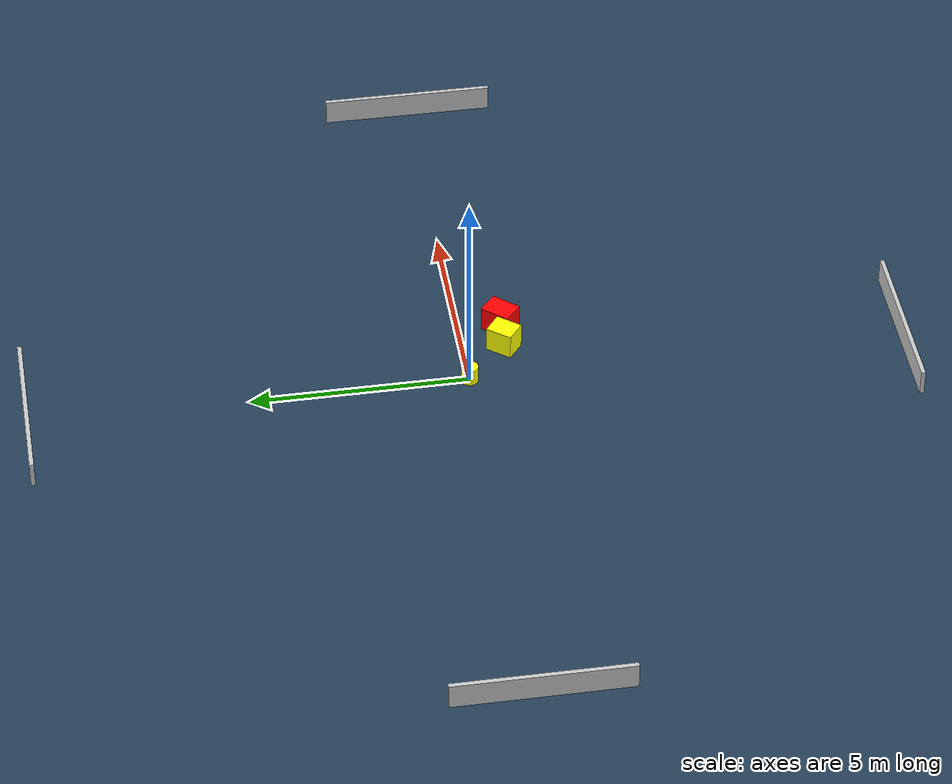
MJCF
<?xml version="1.0" ?>
<mujoco model="generated_environment">
  <option timestep="0.01" integrator="RK4" cone="elliptic"/>
  <default>
    <geom density="1"/>
  </default>
  <asset>
    <texture builtin="gradient" height="3072" name="skybox" rgb1="0.3 0.5 0.7" rgb2="0 0 0" type="skybox" width="512"/>
    <texture builtin="checker" height="300" name="groundplane" rgb1="0.2 0.3 0.4" rgb2="0.1 0.2 0.3" type="2d" width="300"/>
    <material name="groundplane" reflectance="0.2" texrepeat="5 5" texture="groundplane"/>
  </asset>
  <worldbody>
    <light dir="0 0 -1" directional="true" pos="0 0 1.5"/>
    <geom condim="3" friction="0.5 0.005 0.001" material="groundplane" name="floor" pos="0 0 0" size="0 0 0.05" type="plane"/>
    <body name="walls">
      <geom name="wall_1" condim="4" pos="-10.0 0.0 0.3" rgba="0.800000011920929 0.800000011920929 0.800000011920929 1.0" size="0.05 2.0 0.3" type="box"/>
      <geom name="wall_2" condim="4" pos="10.0 0.0 0.3" rgba="0.800000011920929 0.800000011920929 0.800000011920929 1.0" size="0.05 2.0 0.3" type="box"/>
      <geom name="wall_3" condim="4" pos="0.0 -10.0 0.3" rgba="0.800000011920929 0.800000011920929 0.800000011920929 1.0" size="2.0 0.05 0.3" type="box"/>
      <geom name="wall_4" condim="4" pos="0.0 10.0 0.3" rgba="0.800000011920929 0.800000011920929 0.800000011920929 1.0" size="2.0 0.05 0.3" type="box"/>
    </body>
    <body name="robot">
      <joint name="joint_x" type="slide" pos="0 0 0" axis="1 0 0"/>
      <joint name="joint_y" type="slide" pos="0 0 0" axis="0 1 0"/>
      <geom name="robot" type="cylinder" pos="0.0 0.0 0.2" size="0.2 0.2 0.0" mass="5.0" friction="1.0 0.005 0.0001" condim="4" rgba="1.0 1.0 0.0 1.0"/>
    </body>
    <body name="obstacle_1_movable">
      <geom name="obstacle_1_movable" condim="4" pos="1.000538242394745 -0.9438327629185211 0.3" euler="0 0 231.74819347359573" friction="0.0 0.005 0.001" rgba="1.0 1.0 0.0 1.0" size="0.3123978411430701 0.2571227338253186 0.3" type="box" mass="0.1"/>
      <joint type="free"/>
    </body>
    <body name="obstacle_2_static">
      <geom name="obstacle_2_static" condim="4" pos="1.6914386332095164 -0.973304646231126 0.3" euler="0 0 319.2409630085426" friction="0.0 0.005 0.001" rgba="1.0 0.0 0.0 1.0" size="0.2683339538330348 0.35098442483071823 0.3" type="box"/>
    </body>
  </worldbody>
  <actuator>
    <motor name="actuator_x" joint="joint_x" gear="1" ctrlrange="-1 1"/>
    <motor name="actuator_y" joint="joint_y" gear="1" ctrlrange="-1 1"/>
  </actuator>
</mujoco>
